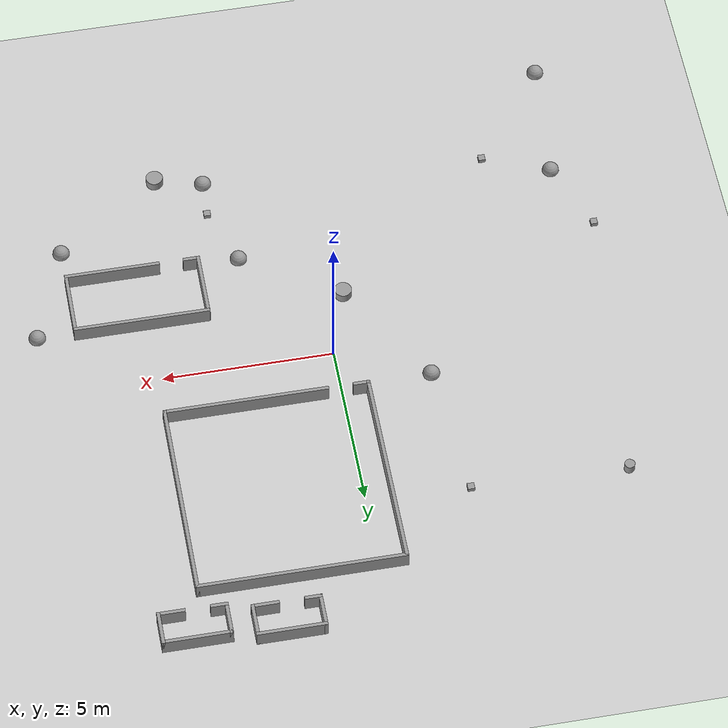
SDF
<sdf version="1.6">
 <world name="default">
  <model name="ground_plane">
   <static>1</static>
   <link name="link">
    <collision name="collision">
     <geometry><plane><normal>0 0 1</normal><size>20 20</size></plane></geometry>
     <surface>
      <contact><collide_bitmask>65535</collide_bitmask></contact>
      <friction><ode><mu>100</mu><mu2>50</mu2></ode></friction>
     </surface>
    </collision>
    <visual name="visual">
     <cast_shadows>0</cast_shadows>
     <geometry><plane><normal>0 0 1</normal><size>20 20</size></plane></geometry>
     <material>
      <script><uri>file://media/materials/scripts/gazebo.material</uri><name>Gazebo/Grey</name></script>
     </material>
    </visual>
   </link>
  </model>
  <model name="shape2">
   <pose>5.3 -2.8 0 0 -0 0</pose>
   <link name="Wall_0">
    <collision name="Wall_0_Collision">
     <geometry><box><size>3.98685 0.1 0.5</size></box></geometry>
     <pose>0 0 0.25 0 -0 0</pose>
    </collision>
    <visual name="Wall_0_Visual">
     <pose>0 0 0.25 0 -0 0</pose>
     <geometry><box><size>3.98685 0.1 0.5</size></box></geometry>
     <material>
      <script><uri>file://media/materials/scripts/gazebo.material</uri><name>Gazebo/Grey</name></script>
      <ambient>1 1 1 1</ambient>
     </material>
     <meta><layer>0</layer></meta>
    </visual>
    <pose>0.003288 0.95 0 0 -0 0</pose>
   </link>
   <link name="Wall_1">
    <collision name="Wall_1_Collision">
     <geometry><box><size>2 0.1 0.5</size></box></geometry>
     <pose>0 0 0.25 0 -0 0</pose>
    </collision>
    <visual name="Wall_1_Visual">
     <pose>0 0 0.25 0 -0 0</pose>
     <geometry><box><size>2 0.1 0.5</size></box></geometry>
     <material>
      <script><uri>file://media/materials/scripts/gazebo.material</uri><name>Gazebo/Grey</name></script>
      <ambient>1 1 1 1</ambient>
     </material>
     <meta><layer>0</layer></meta>
    </visual>
    <pose>1.94671 0 0 0 -0 -1.5708</pose>
   </link>
   <link name="Wall_2">
    <collision name="Wall_2_Collision">
     <geometry><box><size>2.8 0.1 0.5</size></box></geometry>
     <pose>0 0 0.25 0 -0 0</pose>
    </collision>
    <visual name="Wall_2_Visual">
     <pose>0 0 0.25 0 -0 0</pose>
     <geometry><box><size>2.8 0.1 0.5</size></box></geometry>
     <material>
      <script><uri>file://media/materials/scripts/gazebo.material</uri><name>Gazebo/Grey</name></script>
      <ambient>1 1 1 1</ambient>
     </material>
     <meta><layer>0</layer></meta>
    </visual>
    <pose>0.596712 -0.95 0 0 -0 3.14159</pose>
   </link>
   <link name="Wall_4">
    <collision name="Wall_4_Collision">
     <geometry><box><size>2 0.1 0.5</size></box></geometry>
     <pose>0 0 0.25 0 -0 0</pose>
    </collision>
    <visual name="Wall_4_Visual">
     <pose>0 0 0.25 0 -0 0</pose>
     <geometry><box><size>2 0.1 0.5</size></box></geometry>
     <material>
      <script><uri>file://media/materials/scripts/gazebo.material</uri><name>Gazebo/Grey</name></script>
      <ambient>1 1 1 1</ambient>
     </material>
     <meta><layer>0</layer></meta>
    </visual>
    <pose>-1.94671 0 0 0 -0 -1.5708</pose>
   </link>
   <link name="Wall_5">
    <collision name="Wall_5_Collision">
     <geometry><box><size>0.5 0.1 0.5</size></box></geometry>
     <pose>0 0 0.25 0 -0 0</pose>
    </collision>
    <visual name="Wall_5_Visual">
     <pose>0 0 0.25 0 -0 0</pose>
     <geometry><box><size>0.5 0.1 0.5</size></box></geometry>
     <material>
      <script><uri>file://media/materials/scripts/gazebo.material</uri><name>Gazebo/Grey</name></script>
      <ambient>1 1 1 1</ambient>
     </material>
     <meta><layer>0</layer></meta>
    </visual>
    <pose>-1.74671 -0.95 0 0 -0 0</pose>
   </link>
   <static>1</static>
  </model>
  <model name="shape7">
   <pose>2.2 4.4 0 0 -0 0</pose>
   <link name="Wall_34">
    <collision name="Wall_34_Collision">
     <geometry><box><size>6 0.1 0.5</size></box></geometry>
     <pose>0 0 0.25 0 -0 0</pose>
    </collision>
    <visual name="Wall_34_Visual">
     <pose>0 0 0.25 0 -0 0</pose>
     <geometry><box><size>6 0.1 0.5</size></box></geometry>
     <material>
      <script><uri>file://media/materials/scripts/gazebo.material</uri><name>Gazebo/Grey</name></script>
      <ambient>1 1 1 1</ambient>
     </material>
     <meta><layer>0</layer></meta>
    </visual>
    <pose>0 2.95 0 0 -0 0</pose>
   </link>
   <link name="Wall_35">
    <collision name="Wall_35_Collision">
     <geometry><box><size>6 0.1 0.5</size></box></geometry>
     <pose>0 0 0.25 0 -0 0</pose>
    </collision>
    <visual name="Wall_35_Visual">
     <pose>0 0 0.25 0 -0 0</pose>
     <geometry><box><size>6 0.1 0.5</size></box></geometry>
     <material>
      <script><uri>file://media/materials/scripts/gazebo.material</uri><name>Gazebo/Grey</name></script>
      <ambient>1 1 1 1</ambient>
     </material>
     <meta><layer>0</layer></meta>
    </visual>
    <pose>2.95 0 0 0 -0 -1.5708</pose>
   </link>
   <link name="Wall_36">
    <collision name="Wall_36_Collision">
     <geometry><box><size>4.8 0.1 0.5</size></box></geometry>
     <pose>0 0 0.25 0 -0 0</pose>
    </collision>
    <visual name="Wall_36_Visual">
     <pose>0 0 0.25 0 -0 0</pose>
     <geometry><box><size>4.8 0.1 0.5</size></box></geometry>
     <material>
      <script><uri>file://media/materials/scripts/gazebo.material</uri><name>Gazebo/Grey</name></script>
      <ambient>1 1 1 1</ambient>
     </material>
     <meta><layer>0</layer></meta>
    </visual>
    <pose>0.6 -2.95 0 0 -0 3.14159</pose>
   </link>
   <link name="Wall_38">
    <collision name="Wall_38_Collision">
     <geometry><box><size>6 0.1 0.5</size></box></geometry>
     <pose>0 0 0.25 0 -0 0</pose>
    </collision>
    <visual name="Wall_38_Visual">
     <pose>0 0 0.25 0 -0 0</pose>
     <geometry><box><size>6 0.1 0.5</size></box></geometry>
     <material>
      <script><uri>file://media/materials/scripts/gazebo.material</uri><name>Gazebo/Grey</name></script>
      <ambient>1 1 1 1</ambient>
     </material>
     <meta><layer>0</layer></meta>
    </visual>
    <pose>-2.95 0 0 0 -0 -1.5708</pose>
   </link>
   <link name="Wall_39">
    <collision name="Wall_39_Collision">
     <geometry><box><size>0.5 0.1 0.5</size></box></geometry>
     <pose>0 0 0.25 0 -0 0</pose>
    </collision>
    <visual name="Wall_39_Visual">
     <pose>0 0 0.25 0 -0 0</pose>
     <geometry><box><size>0.5 0.1 0.5</size></box></geometry>
     <material>
      <script><uri>file://media/materials/scripts/gazebo.material</uri><name>Gazebo/Grey</name></script>
      <ambient>1 1 1 1</ambient>
     </material>
     <meta><layer>0</layer></meta>
    </visual>
    <pose>-2.75 -2.95 0 0 -0 0</pose>
   </link>
   <static>1</static>
  </model>
  <model name="ball_d=50">
   <link name="link_1">
    <inertial>
     <mass>1</mass>
     <inertia><ixx>0.1</ixx><ixy>0</ixy><ixz>0</ixz><iyy>0.1</iyy><iyz>0</iyz><izz>0.1</izz></inertia>
    </inertial>
    <pose>-7.85 -9.15 0 0 -0 0</pose>
    <visual name="visual">
     <geometry><sphere><radius>0.25</radius></sphere></geometry>
     <material>
      <lighting>1</lighting>
      <script><uri>file://media/materials/scripts/gazebo.material</uri><name>Gazebo/Grey</name></script>
      <shader type="vertex"><normal_map>__default__</normal_map></shader>
      <ambient>0.3 0.3 0.3 1</ambient>
      <diffuse>0.7 0.7 0.7 1</diffuse>
      <specular>0.01 0.01 0.01 1</specular>
      <emissive>0 0 0 1</emissive>
     </material>
    </visual>
    <collision name="collision">
     <geometry><sphere><radius>0.25</radius></sphere></geometry>
     <surface>
      <friction>
       <ode><mu>1</mu><mu2>1</mu2><fdir1>0 0 0</fdir1><slip1>0</slip1><slip2>0</slip2></ode>
       <torsional>
        <coefficient>1</coefficient>
        <patch_radius>0</patch_radius>
        <surface_radius>0</surface_radius>
        <use_patch_radius>1</use_patch_radius>
        <ode><slip>0</slip></ode>
       </torsional>
      </friction>
      <bounce><restitution_coefficient>0</restitution_coefficient><threshold>1e+06</threshold></bounce>
      <contact>
       <collide_without_contact>0</collide_without_contact>
       <collide_without_contact_bitmask>1</collide_without_contact_bitmask>
       <collide_bitmask>1</collide_bitmask>
       <ode>
        <soft_cfm>0</soft_cfm>
        <soft_erp>0.2</soft_erp>
        <kp>1e+13</kp>
        <kd>1</kd>
        <max_vel>0.01</max_vel>
        <min_depth>0</min_depth>
       </ode>
       <bullet>
        <split_impulse>1</split_impulse>
        <split_impulse_penetration_threshold>-0.01</split_impulse_penetration_threshold>
        <soft_cfm>0</soft_cfm>
        <soft_erp>0.2</soft_erp>
        <kp>1e+13</kp>
        <kd>1</kd>
       </bullet>
      </contact>
     </surface>
    </collision>
   </link>
   <static>0</static>
  </model>
  <model name="ball_d=50">
   <link name="link_1">
    <inertial>
     <mass>1</mass>
     <inertia><ixx>0.1</ixx><ixy>0</ixy><ixz>0</ixz><iyy>0.1</iyy><iyz>0</iyz><izz>0.1</izz></inertia>
    </inertial>
    <pose>2.15 -3.85 0 0 -0 0</pose>
    <visual name="visual">
     <geometry><sphere><radius>0.25</radius></sphere></geometry>
     <material>
      <lighting>1</lighting>
      <script><uri>file://media/materials/scripts/gazebo.material</uri><name>Gazebo/Grey</name></script>
      <shader type="vertex"><normal_map>__default__</normal_map></shader>
      <ambient>0.3 0.3 0.3 1</ambient>
      <diffuse>0.7 0.7 0.7 1</diffuse>
      <specular>0.01 0.01 0.01 1</specular>
      <emissive>0 0 0 1</emissive>
     </material>
    </visual>
    <collision name="collision">
     <geometry><sphere><radius>0.25</radius></sphere></geometry>
     <surface>
      <friction>
       <ode><mu>1</mu><mu2>1</mu2><fdir1>0 0 0</fdir1><slip1>0</slip1><slip2>0</slip2></ode>
       <torsional>
        <coefficient>1</coefficient>
        <patch_radius>0</patch_radius>
        <surface_radius>0</surface_radius>
        <use_patch_radius>1</use_patch_radius>
        <ode><slip>0</slip></ode>
       </torsional>
      </friction>
      <bounce><restitution_coefficient>0</restitution_coefficient><threshold>1e+06</threshold></bounce>
      <contact>
       <collide_without_contact>0</collide_without_contact>
       <collide_without_contact_bitmask>1</collide_without_contact_bitmask>
       <collide_bitmask>1</collide_bitmask>
       <ode>
        <soft_cfm>0</soft_cfm>
        <soft_erp>0.2</soft_erp>
        <kp>1e+13</kp>
        <kd>1</kd>
        <max_vel>0.01</max_vel>
        <min_depth>0</min_depth>
       </ode>
       <bullet>
        <split_impulse>1</split_impulse>
        <split_impulse_penetration_threshold>-0.01</split_impulse_penetration_threshold>
        <soft_cfm>0</soft_cfm>
        <soft_erp>0.2</soft_erp>
        <kp>1e+13</kp>
        <kd>1</kd>
       </bullet>
      </contact>
     </surface>
    </collision>
   </link>
   <static>0</static>
  </model>
  <model name="box_d=20">
   <link name="link_2">
    <inertial>
     <mass>1</mass>
     <inertia>
      <ixx>0.166667</ixx>
      <ixy>0</ixy>
      <ixz>0</ixz>
      <iyy>0.166667</iyy>
      <iyz>0</iyz>
      <izz>0.166667</izz>
     </inertia>
    </inertial>
    <pose>2.8 -5.6 0 0 -0 0</pose>
    <visual name="visual">
     <geometry><box><size>0.2 0.2 0.2</size></box></geometry>
     <material>
      <lighting>1</lighting>
      <script><uri>file://media/materials/scripts/gazebo.material</uri><name>Gazebo/Grey</name></script>
      <shader type="vertex"><normal_map>__default__</normal_map></shader>
      <ambient>0.3 0.3 0.3 1</ambient>
      <diffuse>0.7 0.7 0.7 1</diffuse>
      <specular>0.01 0.01 0.01 1</specular>
      <emissive>0 0 0 1</emissive>
     </material>
    </visual>
    <collision name="collision">
     <geometry><box><size>0.2 0.2 0.2</size></box></geometry>
     <surface>
      <friction>
       <ode><mu>1</mu><mu2>1</mu2><fdir1>0 0 0</fdir1><slip1>0</slip1><slip2>0</slip2></ode>
       <torsional>
        <coefficient>1</coefficient>
        <patch_radius>0</patch_radius>
        <surface_radius>0</surface_radius>
        <use_patch_radius>1</use_patch_radius>
        <ode><slip>0</slip></ode>
       </torsional>
      </friction>
      <bounce><restitution_coefficient>0</restitution_coefficient><threshold>1e+06</threshold></bounce>
      <contact>
       <collide_without_contact>0</collide_without_contact>
       <collide_without_contact_bitmask>1</collide_without_contact_bitmask>
       <collide_bitmask>1</collide_bitmask>
       <ode>
        <soft_cfm>0</soft_cfm>
        <soft_erp>0.2</soft_erp>
        <kp>1e+13</kp>
        <kd>1</kd>
        <max_vel>0.01</max_vel>
        <min_depth>0</min_depth>
       </ode>
       <bullet>
        <split_impulse>1</split_impulse>
        <split_impulse_penetration_threshold>-0.01</split_impulse_penetration_threshold>
        <soft_cfm>0</soft_cfm>
        <soft_erp>0.2</soft_erp>
        <kp>1e+13</kp>
        <kd>1</kd>
       </bullet>
      </contact>
     </surface>
    </collision>
   </link>
   <static>0</static>
  </model>
  <model name="shape1">
   <pose>2.8 8.7 0 0 -0 0</pose>
   <link name="Wall_0">
    <collision name="Wall_0_Collision">
     <geometry><box><size>2 0.1 0.5</size></box></geometry>
     <pose>0 0 0.25 0 -0 0</pose>
    </collision>
    <visual name="Wall_0_Visual">
     <pose>0 0 0.25 0 -0 0</pose>
     <geometry><box><size>2 0.1 0.5</size></box></geometry>
     <material>
      <script><uri>file://media/materials/scripts/gazebo.material</uri><name>Gazebo/Grey</name></script>
      <ambient>1 1 1 1</ambient>
     </material>
     <meta><layer>0</layer></meta>
    </visual>
    <pose>0 0.45 0 0 -0 0</pose>
   </link>
   <link name="Wall_1">
    <collision name="Wall_1_Collision">
     <geometry><box><size>1 0.1 0.5</size></box></geometry>
     <pose>0 0 0.25 0 -0 0</pose>
    </collision>
    <visual name="Wall_1_Visual">
     <pose>0 0 0.25 0 -0 0</pose>
     <geometry><box><size>1 0.1 0.5</size></box></geometry>
     <material>
      <script><uri>file://media/materials/scripts/gazebo.material</uri><name>Gazebo/Grey</name></script>
      <ambient>1 1 1 1</ambient>
     </material>
     <meta><layer>0</layer></meta>
    </visual>
    <pose>0.95 -0 0 0 -0 -1.5708</pose>
   </link>
   <link name="Wall_2">
    <collision name="Wall_2_Collision">
     <geometry><box><size>0.8 0.1 0.5</size></box></geometry>
     <pose>0 0 0.25 0 -0 0</pose>
    </collision>
    <visual name="Wall_2_Visual">
     <pose>0 0 0.25 0 -0 0</pose>
     <geometry><box><size>0.8 0.1 0.5</size></box></geometry>
     <material>
      <script><uri>file://media/materials/scripts/gazebo.material</uri><name>Gazebo/Grey</name></script>
      <ambient>1 1 1 1</ambient>
     </material>
     <meta><layer>0</layer></meta>
    </visual>
    <pose>0.6 -0.45 0 0 -0 3.14159</pose>
   </link>
   <link name="Wall_4">
    <collision name="Wall_4_Collision">
     <geometry><box><size>1 0.1 0.5</size></box></geometry>
     <pose>0 0 0.25 0 -0 0</pose>
    </collision>
    <visual name="Wall_4_Visual">
     <pose>0 0 0.25 0 -0 0</pose>
     <geometry><box><size>1 0.1 0.5</size></box></geometry>
     <material>
      <script><uri>file://media/materials/scripts/gazebo.material</uri><name>Gazebo/Grey</name></script>
      <ambient>1 1 1 1</ambient>
     </material>
     <meta><layer>0</layer></meta>
    </visual>
    <pose>-0.95 -0 0 0 -0 -1.5708</pose>
   </link>
   <link name="Wall_5">
    <collision name="Wall_5_Collision">
     <geometry><box><size>0.499474 0.1 0.5</size></box></geometry>
     <pose>0 0 0.25 0 -0 0</pose>
    </collision>
    <visual name="Wall_5_Visual">
     <pose>0 0 0.25 0 -0 0</pose>
     <geometry><box><size>0.499474 0.1 0.5</size></box></geometry>
     <material>
      <script><uri>file://media/materials/scripts/gazebo.material</uri><name>Gazebo/Grey</name></script>
      <ambient>1 1 1 1</ambient>
     </material>
     <meta><layer>0</layer></meta>
    </visual>
    <pose>-0.75 -0.45 0 0 -0 0</pose>
   </link>
   <static>1</static>
  </model>
  <model name="cylinder_d=50">
   <link name="link_0">
    <inertial>
     <mass>1</mass>
     <inertia><ixx>0.145833</ixx><ixy>0</ixy><ixz>0</ixz><iyy>0.145833</iyy><iyz>0</iyz><izz>0.125</izz></inertia>
    </inertial>
    <pose>-0.65 -2.05 0 0 -0 0</pose>
    <visual name="visual">
     <geometry><cylinder><radius>0.25</radius><length>0.5</length></cylinder></geometry>
     <material>
      <lighting>1</lighting>
      <script><uri>file://media/materials/scripts/gazebo.material</uri><name>Gazebo/Grey</name></script>
      <shader type="vertex"><normal_map>__default__</normal_map></shader>
      <ambient>0.3 0.3 0.3 1</ambient>
      <diffuse>0.7 0.7 0.7 1</diffuse>
      <specular>0.01 0.01 0.01 1</specular>
      <emissive>0 0 0 1</emissive>
     </material>
    </visual>
    <collision name="collision">
     <geometry><cylinder><radius>0.25</radius><length>0.5</length></cylinder></geometry>
     <surface>
      <friction>
       <ode><mu>1</mu><mu2>1</mu2><fdir1>0 0 0</fdir1><slip1>0</slip1><slip2>0</slip2></ode>
       <torsional>
        <coefficient>1</coefficient>
        <patch_radius>0</patch_radius>
        <surface_radius>0</surface_radius>
        <use_patch_radius>1</use_patch_radius>
        <ode><slip>0</slip></ode>
       </torsional>
      </friction>
      <bounce><restitution_coefficient>0</restitution_coefficient><threshold>1e+06</threshold></bounce>
      <contact>
       <collide_without_contact>0</collide_without_contact>
       <collide_without_contact_bitmask>1</collide_without_contact_bitmask>
       <collide_bitmask>1</collide_bitmask>
       <ode>
        <soft_cfm>0</soft_cfm>
        <soft_erp>0.2</soft_erp>
        <kp>1e+13</kp>
        <kd>1</kd>
        <max_vel>0.01</max_vel>
        <min_depth>0</min_depth>
       </ode>
       <bullet>
        <split_impulse>1</split_impulse>
        <split_impulse_penetration_threshold>-0.01</split_impulse_penetration_threshold>
        <soft_cfm>0</soft_cfm>
        <soft_erp>0.2</soft_erp>
        <kp>1e+13</kp>
        <kd>1</kd>
       </bullet>
      </contact>
     </surface>
    </collision>
   </link>
   <static>0</static>
  </model>
  <model name="box_d=20">
   <link name="link_2">
    <inertial>
     <mass>1</mass>
     <inertia>
      <ixx>0.166667</ixx>
      <ixy>0</ixy>
      <ixz>0</ixz>
      <iyy>0.166667</iyy>
      <iyz>0</iyz>
      <izz>0.166667</izz>
     </inertia>
    </inertial>
    <pose>-3 5.2 0 0 -0 0</pose>
    <visual name="visual">
     <geometry><box><size>0.2 0.2 0.2</size></box></geometry>
     <material>
      <lighting>1</lighting>
      <script><uri>file://media/materials/scripts/gazebo.material</uri><name>Gazebo/Grey</name></script>
      <shader type="vertex"><normal_map>__default__</normal_map></shader>
      <ambient>0.3 0.3 0.3 1</ambient>
      <diffuse>0.7 0.7 0.7 1</diffuse>
      <specular>0.01 0.01 0.01 1</specular>
      <emissive>0 0 0 1</emissive>
     </material>
    </visual>
    <collision name="collision">
     <geometry><box><size>0.2 0.2 0.2</size></box></geometry>
     <surface>
      <friction>
       <ode><mu>1</mu><mu2>1</mu2><fdir1>0 0 0</fdir1><slip1>0</slip1><slip2>0</slip2></ode>
       <torsional>
        <coefficient>1</coefficient>
        <patch_radius>0</patch_radius>
        <surface_radius>0</surface_radius>
        <use_patch_radius>1</use_patch_radius>
        <ode><slip>0</slip></ode>
       </torsional>
      </friction>
      <bounce><restitution_coefficient>0</restitution_coefficient><threshold>1e+06</threshold></bounce>
      <contact>
       <collide_without_contact>0</collide_without_contact>
       <collide_without_contact_bitmask>1</collide_without_contact_bitmask>
       <collide_bitmask>1</collide_bitmask>
       <ode>
        <soft_cfm>0</soft_cfm>
        <soft_erp>0.2</soft_erp>
        <kp>1e+13</kp>
        <kd>1</kd>
        <max_vel>0.01</max_vel>
        <min_depth>0</min_depth>
       </ode>
       <bullet>
        <split_impulse>1</split_impulse>
        <split_impulse_penetration_threshold>-0.01</split_impulse_penetration_threshold>
        <soft_cfm>0</soft_cfm>
        <soft_erp>0.2</soft_erp>
        <kp>1e+13</kp>
        <kd>1</kd>
       </bullet>
      </contact>
     </surface>
    </collision>
   </link>
   <static>0</static>
  </model>
  <model name="ball_d=50">
   <link name="link_1">
    <inertial>
     <mass>1</mass>
     <inertia><ixx>0.1</ixx><ixy>0</ixy><ixz>0</ixz><iyy>0.1</iyy><iyz>0</iyz><izz>0.1</izz></inertia>
    </inertial>
    <pose>2.75 -6.75 0 0 -0 0</pose>
    <visual name="visual">
     <geometry><sphere><radius>0.25</radius></sphere></geometry>
     <material>
      <lighting>1</lighting>
      <script><uri>file://media/materials/scripts/gazebo.material</uri><name>Gazebo/Grey</name></script>
      <shader type="vertex"><normal_map>__default__</normal_map></shader>
      <ambient>0.3 0.3 0.3 1</ambient>
      <diffuse>0.7 0.7 0.7 1</diffuse>
      <specular>0.01 0.01 0.01 1</specular>
      <emissive>0 0 0 1</emissive>
     </material>
    </visual>
    <collision name="collision">
     <geometry><sphere><radius>0.25</radius></sphere></geometry>
     <surface>
      <friction>
       <ode><mu>1</mu><mu2>1</mu2><fdir1>0 0 0</fdir1><slip1>0</slip1><slip2>0</slip2></ode>
       <torsional>
        <coefficient>1</coefficient>
        <patch_radius>0</patch_radius>
        <surface_radius>0</surface_radius>
        <use_patch_radius>1</use_patch_radius>
        <ode><slip>0</slip></ode>
       </torsional>
      </friction>
      <bounce><restitution_coefficient>0</restitution_coefficient><threshold>1e+06</threshold></bounce>
      <contact>
       <collide_without_contact>0</collide_without_contact>
       <collide_without_contact_bitmask>1</collide_without_contact_bitmask>
       <collide_bitmask>1</collide_bitmask>
       <ode>
        <soft_cfm>0</soft_cfm>
        <soft_erp>0.2</soft_erp>
        <kp>1e+13</kp>
        <kd>1</kd>
        <max_vel>0.01</max_vel>
        <min_depth>0</min_depth>
       </ode>
       <bullet>
        <split_impulse>1</split_impulse>
        <split_impulse_penetration_threshold>-0.01</split_impulse_penetration_threshold>
        <soft_cfm>0</soft_cfm>
        <soft_erp>0.2</soft_erp>
        <kp>1e+13</kp>
        <kd>1</kd>
       </bullet>
      </contact>
     </surface>
    </collision>
   </link>
   <static>0</static>
  </model>
  <model name="ball_d=50">
   <link name="link_1">
    <inertial>
     <mass>1</mass>
     <inertia><ixx>0.1</ixx><ixy>0</ixy><ixz>0</ixz><iyy>0.1</iyy><iyz>0</iyz><izz>0.1</izz></inertia>
    </inertial>
    <pose>8.35 -2.05 0 0 -0 0</pose>
    <visual name="visual">
     <geometry><sphere><radius>0.25</radius></sphere></geometry>
     <material>
      <lighting>1</lighting>
      <script><uri>file://media/materials/scripts/gazebo.material</uri><name>Gazebo/Grey</name></script>
      <shader type="vertex"><normal_map>__default__</normal_map></shader>
      <ambient>0.3 0.3 0.3 1</ambient>
      <diffuse>0.7 0.7 0.7 1</diffuse>
      <specular>0.01 0.01 0.01 1</specular>
      <emissive>0 0 0 1</emissive>
     </material>
    </visual>
    <collision name="collision">
     <geometry><sphere><radius>0.25</radius></sphere></geometry>
     <surface>
      <friction>
       <ode><mu>1</mu><mu2>1</mu2><fdir1>0 0 0</fdir1><slip1>0</slip1><slip2>0</slip2></ode>
       <torsional>
        <coefficient>1</coefficient>
        <patch_radius>0</patch_radius>
        <surface_radius>0</surface_radius>
        <use_patch_radius>1</use_patch_radius>
        <ode><slip>0</slip></ode>
       </torsional>
      </friction>
      <bounce><restitution_coefficient>0</restitution_coefficient><threshold>1e+06</threshold></bounce>
      <contact>
       <collide_without_contact>0</collide_without_contact>
       <collide_without_contact_bitmask>1</collide_without_contact_bitmask>
       <collide_bitmask>1</collide_bitmask>
       <ode>
        <soft_cfm>0</soft_cfm>
        <soft_erp>0.2</soft_erp>
        <kp>1e+13</kp>
        <kd>1</kd>
        <max_vel>0.01</max_vel>
        <min_depth>0</min_depth>
       </ode>
       <bullet>
        <split_impulse>1</split_impulse>
        <split_impulse_penetration_threshold>-0.01</split_impulse_penetration_threshold>
        <soft_cfm>0</soft_cfm>
        <soft_erp>0.2</soft_erp>
        <kp>1e+13</kp>
        <kd>1</kd>
       </bullet>
      </contact>
     </surface>
    </collision>
   </link>
   <static>0</static>
  </model>
  <model name="cylinder_d=30">
   <link name="link_0">
    <inertial>
     <mass>1</mass>
     <inertia><ixx>0.145833</ixx><ixy>0</ixy><ixz>0</ixz><iyy>0.145833</iyy><iyz>0</iyz><izz>0.125</izz></inertia>
    </inertial>
    <pose>-7.55 5.35 0 0 -0 0</pose>
    <visual name="visual">
     <geometry><cylinder><radius>0.15</radius><length>0.5</length></cylinder></geometry>
     <material>
      <lighting>1</lighting>
      <script><uri>file://media/materials/scripts/gazebo.material</uri><name>Gazebo/Grey</name></script>
      <shader type="vertex"><normal_map>__default__</normal_map></shader>
      <ambient>0.3 0.3 0.3 1</ambient>
      <diffuse>0.7 0.7 0.7 1</diffuse>
      <specular>0.01 0.01 0.01 1</specular>
      <emissive>0 0 0 1</emissive>
     </material>
    </visual>
    <collision name="collision">
     <geometry><cylinder><radius>0.15</radius><length>0.5</length></cylinder></geometry>
     <surface>
      <friction>
       <ode><mu>1</mu><mu2>1</mu2><fdir1>0 0 0</fdir1><slip1>0</slip1><slip2>0</slip2></ode>
       <torsional>
        <coefficient>1</coefficient>
        <patch_radius>0</patch_radius>
        <surface_radius>0</surface_radius>
        <use_patch_radius>1</use_patch_radius>
        <ode><slip>0</slip></ode>
       </torsional>
      </friction>
      <bounce><restitution_coefficient>0</restitution_coefficient><threshold>1e+06</threshold></bounce>
      <contact>
       <collide_without_contact>0</collide_without_contact>
       <collide_without_contact_bitmask>1</collide_without_contact_bitmask>
       <collide_bitmask>1</collide_bitmask>
       <ode>
        <soft_cfm>0</soft_cfm>
        <soft_erp>0.2</soft_erp>
        <kp>1e+13</kp>
        <kd>1</kd>
        <max_vel>0.01</max_vel>
        <min_depth>0</min_depth>
       </ode>
       <bullet>
        <split_impulse>1</split_impulse>
        <split_impulse_penetration_threshold>-0.01</split_impulse_penetration_threshold>
        <soft_cfm>0</soft_cfm>
        <soft_erp>0.2</soft_erp>
        <kp>1e+13</kp>
        <kd>1</kd>
       </bullet>
      </contact>
     </surface>
    </collision>
   </link>
   <static>0</static>
  </model>
  <model name="ball_d=50">
   <link name="link_1">
    <inertial>
     <mass>1</mass>
     <inertia><ixx>0.1</ixx><ixy>0</ixy><ixz>0</ixz><iyy>0.1</iyy><iyz>0</iyz><izz>0.1</izz></inertia>
    </inertial>
    <pose>-2.65 1.15 0 0 -0 0</pose>
    <visual name="visual">
     <geometry><sphere><radius>0.25</radius></sphere></geometry>
     <material>
      <lighting>1</lighting>
      <script><uri>file://media/materials/scripts/gazebo.material</uri><name>Gazebo/Grey</name></script>
      <shader type="vertex"><normal_map>__default__</normal_map></shader>
      <ambient>0.3 0.3 0.3 1</ambient>
      <diffuse>0.7 0.7 0.7 1</diffuse>
      <specular>0.01 0.01 0.01 1</specular>
      <emissive>0 0 0 1</emissive>
     </material>
    </visual>
    <collision name="collision">
     <geometry><sphere><radius>0.25</radius></sphere></geometry>
     <surface>
      <friction>
       <ode><mu>1</mu><mu2>1</mu2><fdir1>0 0 0</fdir1><slip1>0</slip1><slip2>0</slip2></ode>
       <torsional>
        <coefficient>1</coefficient>
        <patch_radius>0</patch_radius>
        <surface_radius>0</surface_radius>
        <use_patch_radius>1</use_patch_radius>
        <ode><slip>0</slip></ode>
       </torsional>
      </friction>
      <bounce><restitution_coefficient>0</restitution_coefficient><threshold>1e+06</threshold></bounce>
      <contact>
       <collide_without_contact>0</collide_without_contact>
       <collide_without_contact_bitmask>1</collide_without_contact_bitmask>
       <collide_bitmask>1</collide_bitmask>
       <ode>
        <soft_cfm>0</soft_cfm>
        <soft_erp>0.2</soft_erp>
        <kp>1e+13</kp>
        <kd>1</kd>
        <max_vel>0.01</max_vel>
        <min_depth>0</min_depth>
       </ode>
       <bullet>
        <split_impulse>1</split_impulse>
        <split_impulse_penetration_threshold>-0.01</split_impulse_penetration_threshold>
        <soft_cfm>0</soft_cfm>
        <soft_erp>0.2</soft_erp>
        <kp>1e+13</kp>
        <kd>1</kd>
       </bullet>
      </contact>
     </surface>
    </collision>
   </link>
   <static>0</static>
  </model>
  <model name="box_d=20">
   <link name="link_2">
    <inertial>
     <mass>1</mass>
     <inertia>
      <ixx>0.166667</ixx>
      <ixy>0</ixy>
      <ixz>0</ixz>
      <iyy>0.166667</iyy>
      <iyz>0</iyz>
      <izz>0.166667</izz>
     </inertia>
    </inertial>
    <pose>-8.4 -3.3 0 0 -0 0</pose>
    <visual name="visual">
     <geometry><box><size>0.2 0.2 0.2</size></box></geometry>
     <material>
      <lighting>1</lighting>
      <script><uri>file://media/materials/scripts/gazebo.material</uri><name>Gazebo/Grey</name></script>
      <shader type="vertex"><normal_map>__default__</normal_map></shader>
      <ambient>0.3 0.3 0.3 1</ambient>
      <diffuse>0.7 0.7 0.7 1</diffuse>
      <specular>0.01 0.01 0.01 1</specular>
      <emissive>0 0 0 1</emissive>
     </material>
    </visual>
    <collision name="collision">
     <geometry><box><size>0.2 0.2 0.2</size></box></geometry>
     <surface>
      <friction>
       <ode><mu>1</mu><mu2>1</mu2><fdir1>0 0 0</fdir1><slip1>0</slip1><slip2>0</slip2></ode>
       <torsional>
        <coefficient>1</coefficient>
        <patch_radius>0</patch_radius>
        <surface_radius>0</surface_radius>
        <use_patch_radius>1</use_patch_radius>
        <ode><slip>0</slip></ode>
       </torsional>
      </friction>
      <bounce><restitution_coefficient>0</restitution_coefficient><threshold>1e+06</threshold></bounce>
      <contact>
       <collide_without_contact>0</collide_without_contact>
       <collide_without_contact_bitmask>1</collide_without_contact_bitmask>
       <collide_bitmask>1</collide_bitmask>
       <ode>
        <soft_cfm>0</soft_cfm>
        <soft_erp>0.2</soft_erp>
        <kp>1e+13</kp>
        <kd>1</kd>
        <max_vel>0.01</max_vel>
        <min_depth>0</min_depth>
       </ode>
       <bullet>
        <split_impulse>1</split_impulse>
        <split_impulse_penetration_threshold>-0.01</split_impulse_penetration_threshold>
        <soft_cfm>0</soft_cfm>
        <soft_erp>0.2</soft_erp>
        <kp>1e+13</kp>
        <kd>1</kd>
       </bullet>
      </contact>
     </surface>
    </collision>
   </link>
   <static>0</static>
  </model>
  <model name="ball_d=50">
   <link name="link_1">
    <inertial>
     <mass>1</mass>
     <inertia><ixx>0.1</ixx><ixy>0</ixy><ixz>0</ixz><iyy>0.1</iyy><iyz>0</iyz><izz>0.1</izz></inertia>
    </inertial>
    <pose>7.25 -4.95 0 0 -0 0</pose>
    <visual name="visual">
     <geometry><sphere><radius>0.25</radius></sphere></geometry>
     <material>
      <lighting>1</lighting>
      <script><uri>file://media/materials/scripts/gazebo.material</uri><name>Gazebo/Grey</name></script>
      <shader type="vertex"><normal_map>__default__</normal_map></shader>
      <ambient>0.3 0.3 0.3 1</ambient>
      <diffuse>0.7 0.7 0.7 1</diffuse>
      <specular>0.01 0.01 0.01 1</specular>
      <emissive>0 0 0 1</emissive>
     </material>
    </visual>
    <collision name="collision">
     <geometry><sphere><radius>0.25</radius></sphere></geometry>
     <surface>
      <friction>
       <ode><mu>1</mu><mu2>1</mu2><fdir1>0 0 0</fdir1><slip1>0</slip1><slip2>0</slip2></ode>
       <torsional>
        <coefficient>1</coefficient>
        <patch_radius>0</patch_radius>
        <surface_radius>0</surface_radius>
        <use_patch_radius>1</use_patch_radius>
        <ode><slip>0</slip></ode>
       </torsional>
      </friction>
      <bounce><restitution_coefficient>0</restitution_coefficient><threshold>1e+06</threshold></bounce>
      <contact>
       <collide_without_contact>0</collide_without_contact>
       <collide_without_contact_bitmask>1</collide_without_contact_bitmask>
       <collide_bitmask>1</collide_bitmask>
       <ode>
        <soft_cfm>0</soft_cfm>
        <soft_erp>0.2</soft_erp>
        <kp>1e+13</kp>
        <kd>1</kd>
        <max_vel>0.01</max_vel>
        <min_depth>0</min_depth>
       </ode>
       <bullet>
        <split_impulse>1</split_impulse>
        <split_impulse_penetration_threshold>-0.01</split_impulse_penetration_threshold>
        <soft_cfm>0</soft_cfm>
        <soft_erp>0.2</soft_erp>
        <kp>1e+13</kp>
        <kd>1</kd>
       </bullet>
      </contact>
     </surface>
    </collision>
   </link>
   <static>0</static>
  </model>
  <model name="cylinder_d=50">
   <link name="link_0">
    <inertial>
     <mass>1</mass>
     <inertia><ixx>0.145833</ixx><ixy>0</ixy><ixz>0</ixz><iyy>0.145833</iyy><iyz>0</iyz><izz>0.125</izz></inertia>
    </inertial>
    <pose>4.15 -7.05 0 0 -0 0</pose>
    <visual name="visual">
     <geometry><cylinder><radius>0.25</radius><length>0.5</length></cylinder></geometry>
     <material>
      <lighting>1</lighting>
      <script><uri>file://media/materials/scripts/gazebo.material</uri><name>Gazebo/Grey</name></script>
      <shader type="vertex"><normal_map>__default__</normal_map></shader>
      <ambient>0.3 0.3 0.3 1</ambient>
      <diffuse>0.7 0.7 0.7 1</diffuse>
      <specular>0.01 0.01 0.01 1</specular>
      <emissive>0 0 0 1</emissive>
     </material>
    </visual>
    <collision name="collision">
     <geometry><cylinder><radius>0.25</radius><length>0.5</length></cylinder></geometry>
     <surface>
      <friction>
       <ode><mu>1</mu><mu2>1</mu2><fdir1>0 0 0</fdir1><slip1>0</slip1><slip2>0</slip2></ode>
       <torsional>
        <coefficient>1</coefficient>
        <patch_radius>0</patch_radius>
        <surface_radius>0</surface_radius>
        <use_patch_radius>1</use_patch_radius>
        <ode><slip>0</slip></ode>
       </torsional>
      </friction>
      <bounce><restitution_coefficient>0</restitution_coefficient><threshold>1e+06</threshold></bounce>
      <contact>
       <collide_without_contact>0</collide_without_contact>
       <collide_without_contact_bitmask>1</collide_without_contact_bitmask>
       <collide_bitmask>1</collide_bitmask>
       <ode>
        <soft_cfm>0</soft_cfm>
        <soft_erp>0.2</soft_erp>
        <kp>1e+13</kp>
        <kd>1</kd>
        <max_vel>0.01</max_vel>
        <min_depth>0</min_depth>
       </ode>
       <bullet>
        <split_impulse>1</split_impulse>
        <split_impulse_penetration_threshold>-0.01</split_impulse_penetration_threshold>
        <soft_cfm>0</soft_cfm>
        <soft_erp>0.2</soft_erp>
        <kp>1e+13</kp>
        <kd>1</kd>
       </bullet>
      </contact>
     </surface>
    </collision>
   </link>
   <static>0</static>
  </model>
  <model name="box_d=20">
   <link name="link_2">
    <inertial>
     <mass>1</mass>
     <inertia>
      <ixx>0.166667</ixx>
      <ixy>0</ixy>
      <ixz>0</ixz>
      <iyy>0.166667</iyy>
      <iyz>0</iyz>
      <izz>0.166667</izz>
     </inertia>
    </inertial>
    <pose>-5.6 -6.2 0 0 -0 0</pose>
    <visual name="visual">
     <geometry><box><size>0.2 0.2 0.2</size></box></geometry>
     <material>
      <lighting>1</lighting>
      <script><uri>file://media/materials/scripts/gazebo.material</uri><name>Gazebo/Grey</name></script>
      <shader type="vertex"><normal_map>__default__</normal_map></shader>
      <ambient>0.3 0.3 0.3 1</ambient>
      <diffuse>0.7 0.7 0.7 1</diffuse>
      <specular>0.01 0.01 0.01 1</specular>
      <emissive>0 0 0 1</emissive>
     </material>
    </visual>
    <collision name="collision">
     <geometry><box><size>0.2 0.2 0.2</size></box></geometry>
     <surface>
      <friction>
       <ode><mu>1</mu><mu2>1</mu2><fdir1>0 0 0</fdir1><slip1>0</slip1><slip2>0</slip2></ode>
       <torsional>
        <coefficient>1</coefficient>
        <patch_radius>0</patch_radius>
        <surface_radius>0</surface_radius>
        <use_patch_radius>1</use_patch_radius>
        <ode><slip>0</slip></ode>
       </torsional>
      </friction>
      <bounce><restitution_coefficient>0</restitution_coefficient><threshold>1e+06</threshold></bounce>
      <contact>
       <collide_without_contact>0</collide_without_contact>
       <collide_without_contact_bitmask>1</collide_without_contact_bitmask>
       <collide_bitmask>1</collide_bitmask>
       <ode>
        <soft_cfm>0</soft_cfm>
        <soft_erp>0.2</soft_erp>
        <kp>1e+13</kp>
        <kd>1</kd>
        <max_vel>0.01</max_vel>
        <min_depth>0</min_depth>
       </ode>
       <bullet>
        <split_impulse>1</split_impulse>
        <split_impulse_penetration_threshold>-0.01</split_impulse_penetration_threshold>
        <soft_cfm>0</soft_cfm>
        <soft_erp>0.2</soft_erp>
        <kp>1e+13</kp>
        <kd>1</kd>
       </bullet>
      </contact>
     </surface>
    </collision>
   </link>
   <static>0</static>
  </model>
  <model name="shape1">
   <pose>5.4 8.5 0 0 -0 0</pose>
   <link name="Wall_0">
    <collision name="Wall_0_Collision">
     <geometry><box><size>2 0.1 0.5</size></box></geometry>
     <pose>0 0 0.25 0 -0 0</pose>
    </collision>
    <visual name="Wall_0_Visual">
     <pose>0 0 0.25 0 -0 0</pose>
     <geometry><box><size>2 0.1 0.5</size></box></geometry>
     <material>
      <script><uri>file://media/materials/scripts/gazebo.material</uri><name>Gazebo/Grey</name></script>
      <ambient>1 1 1 1</ambient>
     </material>
     <meta><layer>0</layer></meta>
    </visual>
    <pose>0 0.45 0 0 -0 0</pose>
   </link>
   <link name="Wall_1">
    <collision name="Wall_1_Collision">
     <geometry><box><size>1 0.1 0.5</size></box></geometry>
     <pose>0 0 0.25 0 -0 0</pose>
    </collision>
    <visual name="Wall_1_Visual">
     <pose>0 0 0.25 0 -0 0</pose>
     <geometry><box><size>1 0.1 0.5</size></box></geometry>
     <material>
      <script><uri>file://media/materials/scripts/gazebo.material</uri><name>Gazebo/Grey</name></script>
      <ambient>1 1 1 1</ambient>
     </material>
     <meta><layer>0</layer></meta>
    </visual>
    <pose>0.95 -0 0 0 -0 -1.5708</pose>
   </link>
   <link name="Wall_2">
    <collision name="Wall_2_Collision">
     <geometry><box><size>0.8 0.1 0.5</size></box></geometry>
     <pose>0 0 0.25 0 -0 0</pose>
    </collision>
    <visual name="Wall_2_Visual">
     <pose>0 0 0.25 0 -0 0</pose>
     <geometry><box><size>0.8 0.1 0.5</size></box></geometry>
     <material>
      <script><uri>file://media/materials/scripts/gazebo.material</uri><name>Gazebo/Grey</name></script>
      <ambient>1 1 1 1</ambient>
     </material>
     <meta><layer>0</layer></meta>
    </visual>
    <pose>0.6 -0.45 0 0 -0 3.14159</pose>
   </link>
   <link name="Wall_4">
    <collision name="Wall_4_Collision">
     <geometry><box><size>1 0.1 0.5</size></box></geometry>
     <pose>0 0 0.25 0 -0 0</pose>
    </collision>
    <visual name="Wall_4_Visual">
     <pose>0 0 0.25 0 -0 0</pose>
     <geometry><box><size>1 0.1 0.5</size></box></geometry>
     <material>
      <script><uri>file://media/materials/scripts/gazebo.material</uri><name>Gazebo/Grey</name></script>
      <ambient>1 1 1 1</ambient>
     </material>
     <meta><layer>0</layer></meta>
    </visual>
    <pose>-0.95 -0 0 0 -0 -1.5708</pose>
   </link>
   <link name="Wall_5">
    <collision name="Wall_5_Collision">
     <geometry><box><size>0.499474 0.1 0.5</size></box></geometry>
     <pose>0 0 0.25 0 -0 0</pose>
    </collision>
    <visual name="Wall_5_Visual">
     <pose>0 0 0.25 0 -0 0</pose>
     <geometry><box><size>0.499474 0.1 0.5</size></box></geometry>
     <material>
      <script><uri>file://media/materials/scripts/gazebo.material</uri><name>Gazebo/Grey</name></script>
      <ambient>1 1 1 1</ambient>
     </material>
     <meta><layer>0</layer></meta>
    </visual>
    <pose>-0.75 -0.45 0 0 -0 0</pose>
   </link>
   <static>1</static>
  </model>
  <model name="ball_d=50">
   <link name="link_1">
    <inertial>
     <mass>1</mass>
     <inertia><ixx>0.1</ixx><ixy>0</ixy><ixz>0</ixz><iyy>0.1</iyy><iyz>0</iyz><izz>0.1</izz></inertia>
    </inertial>
    <pose>-7.55 -5.45 0 0 -0 0</pose>
    <visual name="visual">
     <geometry><sphere><radius>0.25</radius></sphere></geometry>
     <material>
      <lighting>1</lighting>
      <script><uri>file://media/materials/scripts/gazebo.material</uri><name>Gazebo/Grey</name></script>
      <shader type="vertex"><normal_map>__default__</normal_map></shader>
      <ambient>0.3 0.3 0.3 1</ambient>
      <diffuse>0.7 0.7 0.7 1</diffuse>
      <specular>0.01 0.01 0.01 1</specular>
      <emissive>0 0 0 1</emissive>
     </material>
    </visual>
    <collision name="collision">
     <geometry><sphere><radius>0.25</radius></sphere></geometry>
     <surface>
      <friction>
       <ode><mu>1</mu><mu2>1</mu2><fdir1>0 0 0</fdir1><slip1>0</slip1><slip2>0</slip2></ode>
       <torsional>
        <coefficient>1</coefficient>
        <patch_radius>0</patch_radius>
        <surface_radius>0</surface_radius>
        <use_patch_radius>1</use_patch_radius>
        <ode><slip>0</slip></ode>
       </torsional>
      </friction>
      <bounce><restitution_coefficient>0</restitution_coefficient><threshold>1e+06</threshold></bounce>
      <contact>
       <collide_without_contact>0</collide_without_contact>
       <collide_without_contact_bitmask>1</collide_without_contact_bitmask>
       <collide_bitmask>1</collide_bitmask>
       <ode>
        <soft_cfm>0</soft_cfm>
        <soft_erp>0.2</soft_erp>
        <kp>1e+13</kp>
        <kd>1</kd>
        <max_vel>0.01</max_vel>
        <min_depth>0</min_depth>
       </ode>
       <bullet>
        <split_impulse>1</split_impulse>
        <split_impulse_penetration_threshold>-0.01</split_impulse_penetration_threshold>
        <soft_cfm>0</soft_cfm>
        <soft_erp>0.2</soft_erp>
        <kp>1e+13</kp>
        <kd>1</kd>
       </bullet>
      </contact>
     </surface>
    </collision>
   </link>
   <static>0</static>
  </model>
 </world>
</sdf>
